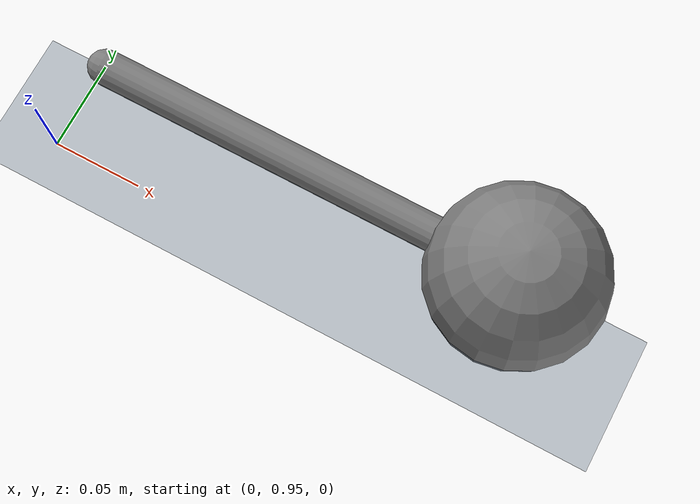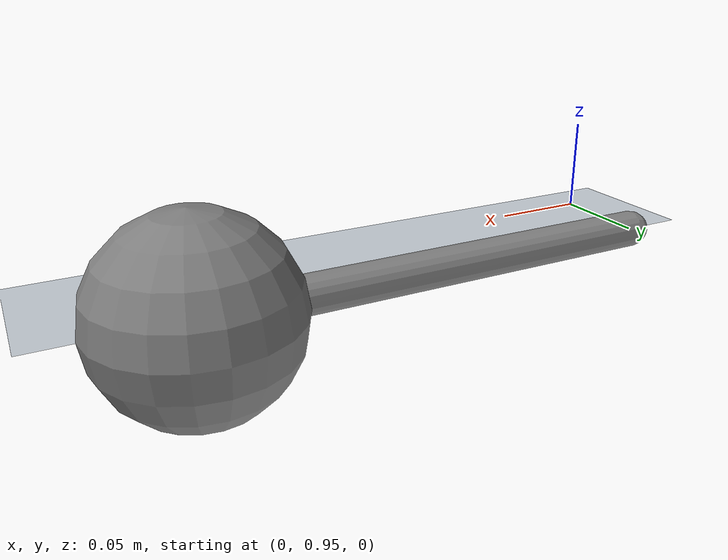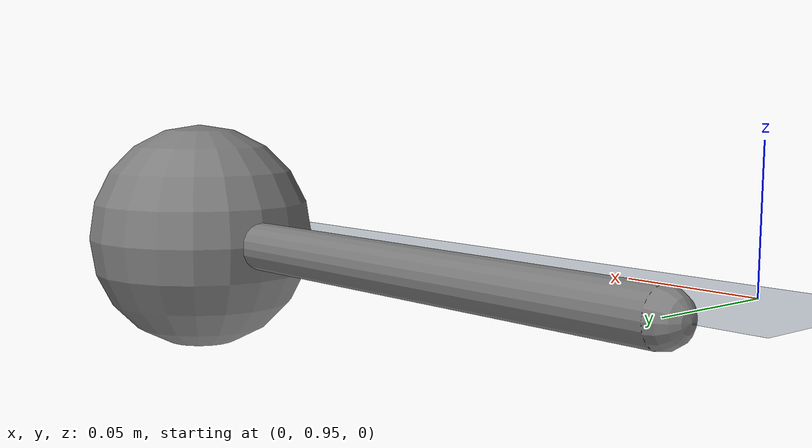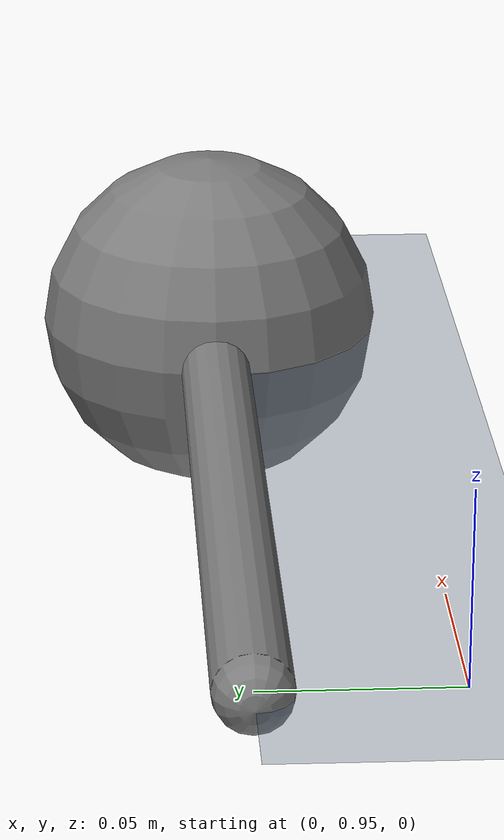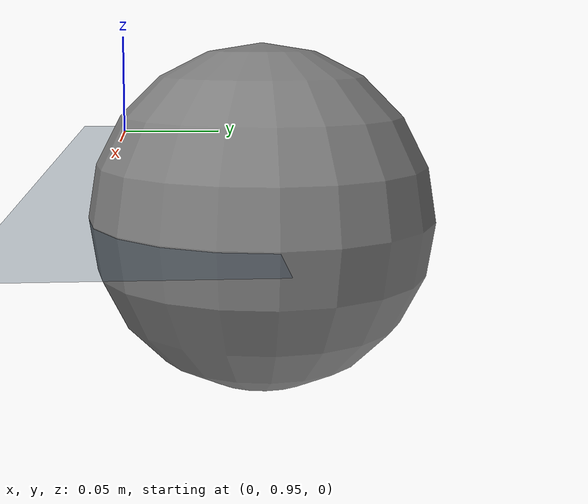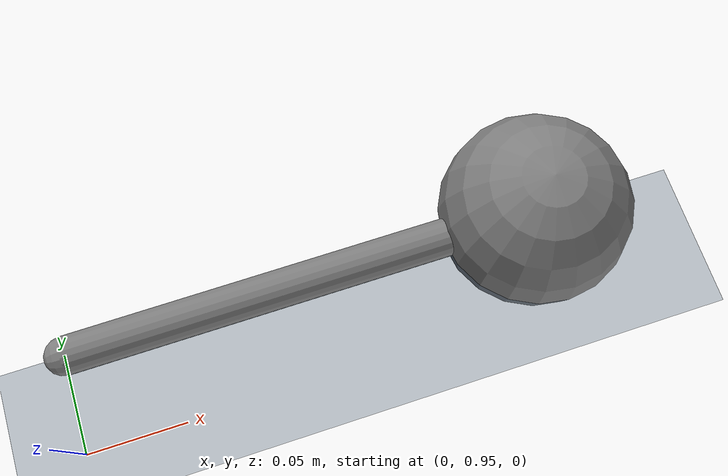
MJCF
<mujoco>
  <option gravity="0 0 -9.81" integrator="murphy" />
  <asset>
    <texture name="grid" type="2d" builtin="checker" rgb1=".1 .2 .3" rgb2=".2 .3 .4" width="300" height="300"/>
    <material name="grid" texture="grid" texrepeat="1 1" texuniform="true"/>
  </asset>

  <worldbody>
    <light diffuse=".5 .5 .5" pos="0 0 -3" dir="0 0 1"/>
    <geom name="floor" type="plane" size="1 1 .1" material="grid"/>

    <body name="pendulum" pos="0 1 0">
      <joint name="hinge" type="hinge" axis="0 0 1" damping="0" frictionloss="0"/>
      <geom name="rod" type="capsule" fromto="0 0 0 0.2485 0 0" size="0.01" mass="0" contype="0" conaffinity="0"/>
      <body name="bob" pos="0.2485 0 0">
        <joint name="bob_joint" type="free"/>
        <geom name="bob_geom" type="sphere" size="0.05" mass="1.0"/>
      </body>
    </body>
  </worldbody>

  <equality>
  </equality>

  <sensor>
  </sensor>

  <plugin>
  </plugin>

  <contact>
  </contact>

  <default>
    <geom contype="1" conaffinity="1"/>
  </default>
</mujoco>
